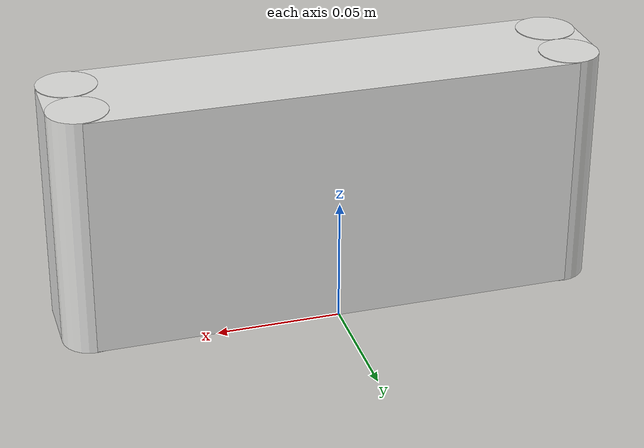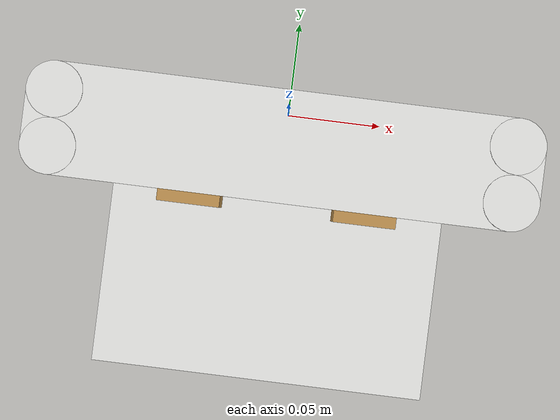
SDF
<?xml version="1.0"?>
<sdf version="1.6">
  <model name="charging_dock_basic">
    <static>true</static>
    <link name="link">
      <visual name="core">
        <pose>0 -0.024 0.049 0 0 0</pose>
        <geometry><box><size>0.196 0.048 0.098</size></box></geometry>
        <material><pbr><metal><metalness>0.00</metalness><roughness>0.35</roughness></metal></pbr><ambient>0.880 0.880 0.870 1</ambient><diffuse>0.880 0.880 0.870 1</diffuse><specular>0.35 0.35 0.35 1</specular><emissive>0 0 0 1</emissive></material>
      </visual>
      <visual name="side0">
        <pose>-0.104 -0.024 0.049 0 0 0</pose>
        <geometry><box><size>0.012 0.024 0.098</size></box></geometry>
        <material><pbr><metal><metalness>0.00</metalness><roughness>0.35</roughness></metal></pbr><ambient>0.880 0.880 0.870 1</ambient><diffuse>0.880 0.880 0.870 1</diffuse><specular>0.35 0.35 0.35 1</specular><emissive>0 0 0 1</emissive></material>
      </visual>
      <visual name="side1">
        <pose>0.104 -0.024 0.049 0 0 0</pose>
        <geometry><box><size>0.012 0.024 0.098</size></box></geometry>
        <material><pbr><metal><metalness>0.00</metalness><roughness>0.35</roughness></metal></pbr><ambient>0.880 0.880 0.870 1</ambient><diffuse>0.880 0.880 0.870 1</diffuse><specular>0.35 0.35 0.35 1</specular><emissive>0 0 0 1</emissive></material>
      </visual>
      <visual name="tube0">
        <pose>-0.098 -0.012 0.049 0 0 0</pose>
        <geometry><cylinder><radius>0.012</radius><length>0.0986</length></cylinder></geometry>
        <material><pbr><metal><metalness>0.00</metalness><roughness>0.35</roughness></metal></pbr><ambient>0.880 0.880 0.870 1</ambient><diffuse>0.880 0.880 0.870 1</diffuse><specular>0.35 0.35 0.35 1</specular><emissive>0 0 0 1</emissive></material>
      </visual>
      <visual name="tube1">
        <pose>-0.098 -0.036 0.049 0 0 0</pose>
        <geometry><cylinder><radius>0.012</radius><length>0.0986</length></cylinder></geometry>
        <material><pbr><metal><metalness>0.00</metalness><roughness>0.35</roughness></metal></pbr><ambient>0.880 0.880 0.870 1</ambient><diffuse>0.880 0.880 0.870 1</diffuse><specular>0.35 0.35 0.35 1</specular><emissive>0 0 0 1</emissive></material>
      </visual>
      <visual name="tube2">
        <pose>0.098 -0.012 0.049 0 0 0</pose>
        <geometry><cylinder><radius>0.012</radius><length>0.0986</length></cylinder></geometry>
        <material><pbr><metal><metalness>0.00</metalness><roughness>0.35</roughness></metal></pbr><ambient>0.880 0.880 0.870 1</ambient><diffuse>0.880 0.880 0.870 1</diffuse><specular>0.35 0.35 0.35 1</specular><emissive>0 0 0 1</emissive></material>
      </visual>
      <visual name="tube3">
        <pose>0.098 -0.036 0.049 0 0 0</pose>
        <geometry><cylinder><radius>0.012</radius><length>0.0986</length></cylinder></geometry>
        <material><pbr><metal><metalness>0.00</metalness><roughness>0.35</roughness></metal></pbr><ambient>0.880 0.880 0.870 1</ambient><diffuse>0.880 0.880 0.870 1</diffuse><specular>0.35 0.35 0.35 1</specular><emissive>0 0 0 1</emissive></material>
      </visual>
      <visual name="plate">
        <pose>0 -0.0965 0.00075 0 0 0</pose>
        <geometry><box><size>0.18 0.097 0.0015</size></box></geometry>
        <material><pbr><metal><metalness>0.00</metalness><roughness>0.35</roughness></metal></pbr><ambient>0.880 0.880 0.870 1</ambient><diffuse>0.880 0.880 0.870 1</diffuse><specular>0.35 0.35 0.35 1</specular><emissive>0 0 0 1</emissive></material>
      </visual>
      <visual name="contact0">
        <pose>-0.045 -0.051 0.022 0 0 0</pose>
        <geometry><box><size>0.032 0.006 0.018</size></box></geometry>
        <material><pbr><metal><metalness>0.70</metalness><roughness>0.20</roughness></metal></pbr><ambient>0.720 0.550 0.300 1</ambient><diffuse>0.720 0.550 0.300 1</diffuse><specular>0.35 0.35 0.35 1</specular><emissive>0 0 0 1</emissive></material>
      </visual>
      <visual name="contact1">
        <pose>0.045 -0.051 0.022 0 0 0</pose>
        <geometry><box><size>0.032 0.006 0.018</size></box></geometry>
        <material><pbr><metal><metalness>0.70</metalness><roughness>0.20</roughness></metal></pbr><ambient>0.720 0.550 0.300 1</ambient><diffuse>0.720 0.550 0.300 1</diffuse><specular>0.35 0.35 0.35 1</specular><emissive>0 0 0 1</emissive></material>
      </visual>
      <collision name="panel">
        <pose>0 -0.024 0.049 0 0 0</pose>
        <geometry><box><size>0.22 0.048 0.098</size></box></geometry>
      </collision>
    </link>
    <allow_auto_disable>1</allow_auto_disable>
  </model>
</sdf>
